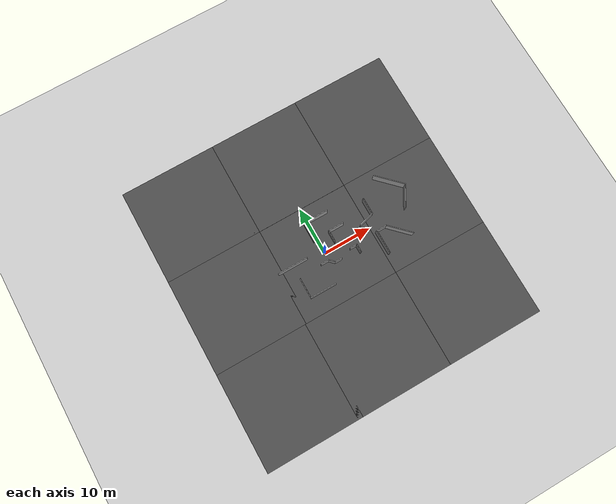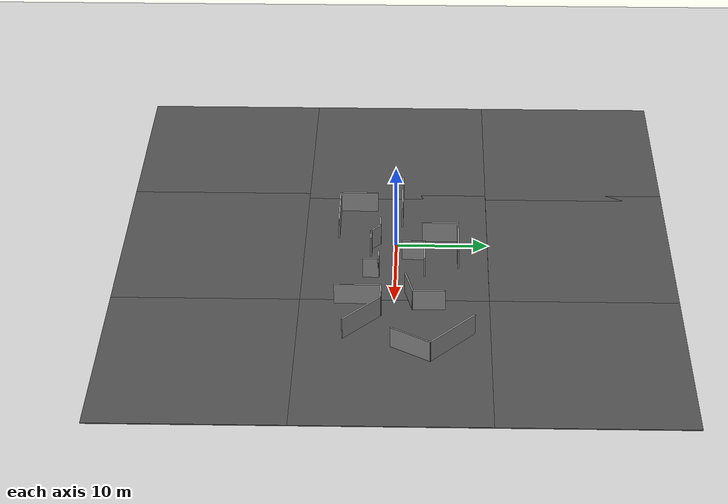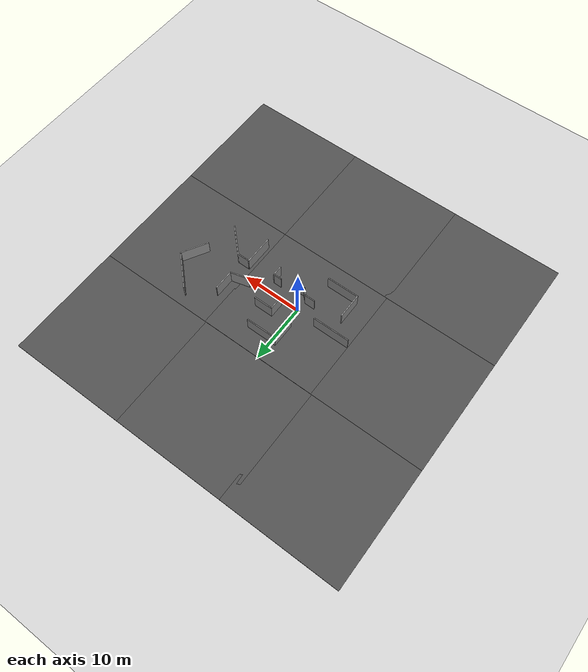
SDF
<sdf version="1.6">
 <world name="default">
  <light name="sun" type="directional">
   <pose>0 0 10 0 -0 0</pose>
   <diffuse>0.8 0.8 0.8 1</diffuse>
   <specular>0.1 0.1 0.1 1</specular>
   <attenuation>
    <range>1000</range>
    <constant>0.9</constant>
    <linear>0.01</linear>
    <quadratic>0.001</quadratic>
   </attenuation>
   <direction>-0.5 0.5 -1</direction>
  </light>
  <model name="ground_plane">
   <static>1</static>
   <link name="link">
    <collision name="collision">
     <geometry><plane><normal>0 0 1</normal><size>100 100</size></plane></geometry>
     <surface><friction><ode><mu>100</mu><mu2>50</mu2></ode></friction></surface>
    </collision>
    <visual name="visual">
     <cast_shadows>0</cast_shadows>
     <geometry><plane><normal>0 0 1</normal><size>100 100</size></plane></geometry>
     <material>
      <script><uri>file://media/materials/scripts/gazebo.material</uri><name>Gazebo/Grey</name></script>
     </material>
    </visual>
   </link>
  </model>
  <gravity>0 0 -9.8</gravity>
  <magnetic_field>6e-06 2.3e-05 -4.2e-05</magnetic_field>
  <atmosphere type="adiabatic"/>
  <physics name="default_physics" default="0" type="ode">
   <max_step_size>0.001</max_step_size>
   <real_time_factor>1</real_time_factor>
   <real_time_update_rate>1000</real_time_update_rate>
  </physics>
  <scene><ambient>0.4 0.4 0.4 1</ambient><background>0.7 0.7 0.7 1</background><shadows>1</shadows></scene>
  <spherical_coordinates>
   <surface_model>EARTH_WGS84</surface_model>
   <latitude_deg>0</latitude_deg>
   <longitude_deg>0</longitude_deg>
   <elevation>0</elevation>
   <heading_deg>0</heading_deg>
  </spherical_coordinates>
  <model name="asphalt_plane">
   <static>1</static>
   <link name="link">
    <collision name="collision"><geometry><box><size>20 20 0.1</size></box></geometry></collision>
    <visual name="visual">
     <cast_shadows>0</cast_shadows>
     <geometry><box><size>20 20 0.1</size></box></geometry>
     <material>
      <script>
       <uri>model://asphalt_plane/materials/scripts</uri>
       <uri>model://asphalt_plane/materials/textures</uri>
       <name>vrc/asphalt</name>
      </script>
     </material>
    </visual>
   </link>
   <pose>0.196693 -0.010109 0 0 -0 0</pose>
  </model>
  <model name="Maze2">
   <pose>5.19327 0.994102 0 0 -0 0</pose>
   <link name="Wall_0">
    <collision name="Wall_0_Collision">
     <geometry><box><size>1.75 0.15 2.5</size></box></geometry>
     <pose>0 0 1.25 0 -0 0</pose>
    </collision>
    <visual name="Wall_0_Visual">
     <pose>0 0 1.25 0 -0 0</pose>
     <geometry><box><size>1.75 0.15 2.5</size></box></geometry>
     <material>
      <script><uri>file://media/materials/scripts/gazebo.material</uri><name>Gazebo/Grey</name></script>
      <ambient>1 1 1 1</ambient>
     </material>
    </visual>
    <pose>-6.19327 -2.7241 0 0 -0 0</pose>
   </link>
   <link name="Wall_1">
    <collision name="Wall_1_Collision">
     <geometry><box><size>1.5 0.15 2.5</size></box></geometry>
     <pose>0 0 1.25 0 -0 0</pose>
    </collision>
    <visual name="Wall_1_Visual">
     <pose>0 0 1.25 0 -0 0</pose>
     <geometry><box><size>1.5 0.15 2.5</size></box></geometry>
     <material>
      <script><uri>file://media/materials/scripts/gazebo.material</uri><name>Gazebo/Grey</name></script>
      <ambient>1 1 1 1</ambient>
     </material>
    </visual>
    <pose>-4.91597 -3.2014 0 0 0 -0.785398</pose>
   </link>
   <link name="Wall_10">
    <collision name="Wall_10_Collision">
     <geometry><box><size>2.5 0.15 2.5</size></box></geometry>
     <pose>0 0 1.25 0 -0 0</pose>
    </collision>
    <visual name="Wall_10_Visual">
     <pose>0 0 1.25 0 -0 0</pose>
     <geometry><box><size>2.5 0.15 2.5</size></box></geometry>
     <material>
      <script><uri>file://media/materials/scripts/gazebo.material</uri><name>Gazebo/Grey</name></script>
      <ambient>1 1 1 1</ambient>
     </material>
    </visual>
    <pose>-2.58252 0.962314 0 0 -0 1.5708</pose>
   </link>
   <link name="Wall_11">
    <collision name="Wall_11_Collision">
     <geometry><box><size>3.25 0.15 2.5</size></box></geometry>
     <pose>0 0 1.25 0 -0 0</pose>
    </collision>
    <visual name="Wall_11_Visual">
     <pose>0 0 1.25 0 -0 0</pose>
     <geometry><box><size>3.25 0.15 2.5</size></box></geometry>
     <material>
      <script><uri>file://media/materials/scripts/gazebo.material</uri><name>Gazebo/Grey</name></script>
      <ambient>1 1 1 1</ambient>
     </material>
    </visual>
    <pose>-1.03252 2.13732 0 0 -0 0</pose>
   </link>
   <link name="Wall_13">
    <collision name="Wall_13_Collision">
     <geometry><box><size>3.5 0.15 2.5</size></box></geometry>
     <pose>0 0 1.25 0 -0 0</pose>
    </collision>
    <visual name="Wall_13_Visual">
     <pose>0 0 1.25 0 -0 0</pose>
     <geometry><box><size>3.5 0.15 2.5</size></box></geometry>
     <material>
      <script><uri>file://media/materials/scripts/gazebo.material</uri><name>Gazebo/Grey</name></script>
      <ambient>1 1 1 1</ambient>
     </material>
    </visual>
    <pose>6.31771 2.60288 0 0 0 -1.5708</pose>
   </link>
   <link name="Wall_14">
    <collision name="Wall_14_Collision">
     <geometry><box><size>3.25 0.15 2.5</size></box></geometry>
     <pose>0 0 1.25 0 -0 0</pose>
    </collision>
    <visual name="Wall_14_Visual">
     <pose>0 0 1.25 0 -0 0</pose>
     <geometry><box><size>3.25 0.15 2.5</size></box></geometry>
     <material>
      <script><uri>file://media/materials/scripts/gazebo.material</uri><name>Gazebo/Grey</name></script>
      <ambient>1 1 1 1</ambient>
     </material>
    </visual>
    <pose>4.82052 0.526714 0 0 0 -2.87979</pose>
   </link>
   <link name="Wall_16">
    <collision name="Wall_16_Collision">
     <geometry><box><size>6.5 0.15 2.5</size></box></geometry>
     <pose>0 0 1.25 0 -0 0</pose>
    </collision>
    <visual name="Wall_16_Visual">
     <pose>0 0 1.25 0 -0 0</pose>
     <geometry><box><size>6.5 0.15 2.5</size></box></geometry>
     <material>
      <script><uri>file://media/materials/scripts/gazebo.material</uri><name>Gazebo/Grey</name></script>
      <ambient>1 1 1 1</ambient>
     </material>
    </visual>
    <pose>12.6083 5.02653 0 0 0 -0.785398</pose>
   </link>
   <link name="Wall_17">
    <collision name="Wall_17_Collision">
     <geometry><box><size>4.75 0.15 2.5</size></box></geometry>
     <pose>0 0 1.25 0 -0 0</pose>
    </collision>
    <visual name="Wall_17_Visual">
     <pose>0 0 1.25 0 -0 0</pose>
     <geometry><box><size>4.75 0.15 2.5</size></box></geometry>
     <material>
      <script><uri>file://media/materials/scripts/gazebo.material</uri><name>Gazebo/Grey</name></script>
      <ambient>1 1 1 1</ambient>
     </material>
    </visual>
    <pose>13.7034 0.78961 0 0 0 -2.0944</pose>
   </link>
   <link name="Wall_19">
    <collision name="Wall_19_Collision">
     <geometry><box><size>5 0.15 2.5</size></box></geometry>
     <pose>0 0 1.25 0 -0 0</pose>
    </collision>
    <visual name="Wall_19_Visual">
     <pose>0 0 1.25 0 -0 0</pose>
     <geometry><box><size>5 0.15 2.5</size></box></geometry>
     <material>
      <script><uri>file://media/materials/scripts/gazebo.material</uri><name>Gazebo/Grey</name></script>
      <ambient>1 1 1 1</ambient>
     </material>
    </visual>
    <pose>5.37403 -4.84619 0 0 -0 1.5708</pose>
   </link>
   <link name="Wall_2">
    <collision name="Wall_2_Collision">
     <geometry><box><size>1.5 0.15 2.5</size></box></geometry>
     <pose>0 0 1.25 0 -0 0</pose>
    </collision>
    <visual name="Wall_2_Visual">
     <pose>0 0 1.25 0 -0 0</pose>
     <geometry><box><size>1.5 0.15 2.5</size></box></geometry>
     <material>
      <script><uri>file://media/materials/scripts/gazebo.material</uri><name>Gazebo/Grey</name></script>
      <ambient>1 1 1 1</ambient>
     </material>
    </visual>
    <pose>-3.76367 -3.6787 0 0 -0 0</pose>
   </link>
   <link name="Wall_20">
    <collision name="Wall_20_Collision">
     <geometry><box><size>2.25 0.15 2.5</size></box></geometry>
     <pose>0 0 1.25 0 -0 0</pose>
    </collision>
    <visual name="Wall_20_Visual">
     <pose>0 0 1.25 0 -0 0</pose>
     <geometry><box><size>2.25 0.15 2.5</size></box></geometry>
     <material>
      <script><uri>file://media/materials/scripts/gazebo.material</uri><name>Gazebo/Grey</name></script>
      <ambient>1 1 1 1</ambient>
     </material>
    </visual>
    <pose>6.42403 -2.42119 0 0 -0 0</pose>
   </link>
   <link name="Wall_21">
    <collision name="Wall_21_Collision">
     <geometry><box><size>5.5 0.15 2.5</size></box></geometry>
     <pose>0 0 1.25 0 -0 0</pose>
    </collision>
    <visual name="Wall_21_Visual">
     <pose>0 0 1.25 0 -0 0</pose>
     <geometry><box><size>5.5 0.15 2.5</size></box></geometry>
     <material>
      <script><uri>file://media/materials/scripts/gazebo.material</uri><name>Gazebo/Grey</name></script>
      <ambient>1 1 1 1</ambient>
     </material>
    </visual>
    <pose>9.36554 -4.3127 0 0 0 -0.785398</pose>
   </link>
   <link name="Wall_23">
    <collision name="Wall_23_Collision">
     <geometry><box><size>4 0.15 2.5</size></box></geometry>
     <pose>0 0 1.25 0 -0 0</pose>
    </collision>
    <visual name="Wall_23_Visual">
     <pose>0 0 1.25 0 -0 0</pose>
     <geometry><box><size>4 0.15 2.5</size></box></geometry>
     <material>
      <script><uri>file://media/materials/scripts/gazebo.material</uri><name>Gazebo/Grey</name></script>
      <ambient>1 1 1 1</ambient>
     </material>
    </visual>
    <pose>-6.01786 3.84869 0 0 -0 1.5708</pose>
   </link>
   <link name="Wall_24">
    <collision name="Wall_24_Collision">
     <geometry><box><size>5.25 0.15 2.5</size></box></geometry>
     <pose>0 0 1.25 0 -0 0</pose>
    </collision>
    <visual name="Wall_24_Visual">
     <pose>0 0 1.25 0 -0 0</pose>
     <geometry><box><size>5.25 0.15 2.5</size></box></geometry>
     <material>
      <script><uri>file://media/materials/scripts/gazebo.material</uri><name>Gazebo/Grey</name></script>
      <ambient>1 1 1 1</ambient>
     </material>
    </visual>
    <pose>-3.46786 5.77369 0 0 -0 0</pose>
   </link>
   <link name="Wall_26">
    <collision name="Wall_26_Collision">
     <geometry><box><size>6.25 0.15 2.5</size></box></geometry>
     <pose>0 0 1.25 0 -0 0</pose>
    </collision>
    <visual name="Wall_26_Visual">
     <pose>0 0 1.25 0 -0 0</pose>
     <geometry><box><size>6.25 0.15 2.5</size></box></geometry>
     <material>
      <script><uri>file://media/materials/scripts/gazebo.material</uri><name>Gazebo/Grey</name></script>
      <ambient>1 1 1 1</ambient>
     </material>
    </visual>
    <pose>-11.8345 -0.354691 0 0 -0 3.14159</pose>
   </link>
   <link name="Wall_28">
    <collision name="Wall_28_Collision">
     <geometry><box><size>4.25 0.15 2.5</size></box></geometry>
     <pose>0 0 1.25 0 -0 0</pose>
    </collision>
    <visual name="Wall_28_Visual">
     <pose>0 0 1.25 0 -0 0</pose>
     <geometry><box><size>4.25 0.15 2.5</size></box></geometry>
     <material>
      <script><uri>file://media/materials/scripts/gazebo.material</uri><name>Gazebo/Grey</name></script>
      <ambient>1 1 1 1</ambient>
     </material>
    </visual>
    <pose>-11.7952 -5.25266 0 0 0 -1.5708</pose>
   </link>
   <link name="Wall_29">
    <collision name="Wall_29_Collision">
     <geometry><box><size>5.5 0.15 2.5</size></box></geometry>
     <pose>0 0 1.25 0 -0 0</pose>
    </collision>
    <visual name="Wall_29_Visual">
     <pose>0 0 1.25 0 -0 0</pose>
     <geometry><box><size>5.5 0.15 2.5</size></box></geometry>
     <material>
      <script><uri>file://media/materials/scripts/gazebo.material</uri><name>Gazebo/Grey</name></script>
      <ambient>1 1 1 1</ambient>
     </material>
    </visual>
    <pose>-9.12017 -7.30266 0 0 -0 0</pose>
   </link>
   <link name="Wall_5">
    <collision name="Wall_5_Collision">
     <geometry><box><size>1.5 0.15 2.5</size></box></geometry>
     <pose>0 0 1.25 0 -0 0</pose>
    </collision>
    <visual name="Wall_5_Visual">
     <pose>0 0 1.25 0 -0 0</pose>
     <geometry><box><size>1.5 0.15 2.5</size></box></geometry>
     <material>
      <script><uri>file://media/materials/scripts/gazebo.material</uri><name>Gazebo/Grey</name></script>
      <ambient>1 1 1 1</ambient>
     </material>
    </visual>
    <pose>0.04564 -2.7943 0 0 -0 0</pose>
   </link>
   <link name="Wall_6">
    <collision name="Wall_6_Collision">
     <geometry><box><size>1.75 0.15 2.5</size></box></geometry>
     <pose>0 0 1.25 0 -0 0</pose>
    </collision>
    <visual name="Wall_6_Visual">
     <pose>0 0 1.25 0 -0 0</pose>
     <geometry><box><size>1.75 0.15 2.5</size></box></geometry>
     <material>
      <script><uri>file://media/materials/scripts/gazebo.material</uri><name>Gazebo/Grey</name></script>
      <ambient>1 1 1 1</ambient>
     </material>
    </visual>
    <pose>0.720639 -3.5943 0 0 0 -1.5708</pose>
   </link>
   <static>1</static>
  </model>
  <model name="asphalt_plane_0">
   <static>1</static>
   <link name="link">
    <collision name="collision"><geometry><box><size>20 20 0.1</size></box></geometry></collision>
    <visual name="visual">
     <cast_shadows>0</cast_shadows>
     <geometry><box><size>20 20 0.1</size></box></geometry>
     <material>
      <script>
       <uri>model://asphalt_plane/materials/scripts</uri>
       <uri>model://asphalt_plane/materials/textures</uri>
       <name>vrc/asphalt</name>
      </script>
     </material>
    </visual>
   </link>
   <pose>20 0 0 0 -0 0</pose>
  </model>
  <model name="asphalt_plane_1">
   <static>1</static>
   <link name="link">
    <collision name="collision"><geometry><box><size>20 20 0.1</size></box></geometry></collision>
    <visual name="visual">
     <cast_shadows>0</cast_shadows>
     <geometry><box><size>20 20 0.1</size></box></geometry>
     <material>
      <script>
       <uri>model://asphalt_plane/materials/scripts</uri>
       <uri>model://asphalt_plane/materials/textures</uri>
       <name>vrc/asphalt</name>
      </script>
     </material>
    </visual>
   </link>
   <pose>-19 0 0 0 -0 0</pose>
  </model>
  <model name="asphalt_plane_2">
   <static>1</static>
   <link name="link">
    <collision name="collision"><geometry><box><size>20 20 0.1</size></box></geometry></collision>
    <visual name="visual">
     <cast_shadows>0</cast_shadows>
     <geometry><box><size>20 20 0.1</size></box></geometry>
     <material>
      <script>
       <uri>model://asphalt_plane/materials/scripts</uri>
       <uri>model://asphalt_plane/materials/textures</uri>
       <name>vrc/asphalt</name>
      </script>
     </material>
    </visual>
   </link>
   <pose>20 -20 0 0 -0 0</pose>
  </model>
  <model name="asphalt_plane_3">
   <static>1</static>
   <link name="link">
    <collision name="collision"><geometry><box><size>20 20 0.1</size></box></geometry></collision>
    <visual name="visual">
     <cast_shadows>0</cast_shadows>
     <geometry><box><size>20 20 0.1</size></box></geometry>
     <material>
      <script>
       <uri>model://asphalt_plane/materials/scripts</uri>
       <uri>model://asphalt_plane/materials/textures</uri>
       <name>vrc/asphalt</name>
      </script>
     </material>
    </visual>
   </link>
   <pose>0 -20 0 0 -0 0</pose>
  </model>
  <model name="asphalt_plane_4">
   <static>1</static>
   <link name="link">
    <collision name="collision"><geometry><box><size>20 20 0.1</size></box></geometry></collision>
    <visual name="visual">
     <cast_shadows>0</cast_shadows>
     <geometry><box><size>20 20 0.1</size></box></geometry>
     <material>
      <script>
       <uri>model://asphalt_plane/materials/scripts</uri>
       <uri>model://asphalt_plane/materials/textures</uri>
       <name>vrc/asphalt</name>
      </script>
     </material>
    </visual>
   </link>
   <pose>-19 -20 0 0 -0 0</pose>
  </model>
  <model name="asphalt_plane_5">
   <static>1</static>
   <link name="link">
    <collision name="collision"><geometry><box><size>20 20 0.1</size></box></geometry></collision>
    <visual name="visual">
     <cast_shadows>0</cast_shadows>
     <geometry><box><size>20 20 0.1</size></box></geometry>
     <material>
      <script>
       <uri>model://asphalt_plane/materials/scripts</uri>
       <uri>model://asphalt_plane/materials/textures</uri>
       <name>vrc/asphalt</name>
      </script>
     </material>
    </visual>
   </link>
   <pose>-19 20 0 0 -0 0</pose>
  </model>
  <model name="asphalt_plane_6">
   <static>1</static>
   <link name="link">
    <collision name="collision"><geometry><box><size>20 20 0.1</size></box></geometry></collision>
    <visual name="visual">
     <cast_shadows>0</cast_shadows>
     <geometry><box><size>20 20 0.1</size></box></geometry>
     <material>
      <script>
       <uri>model://asphalt_plane/materials/scripts</uri>
       <uri>model://asphalt_plane/materials/textures</uri>
       <name>vrc/asphalt</name>
      </script>
     </material>
    </visual>
   </link>
   <pose>0 20 0 0 -0 0</pose>
  </model>
  <model name="asphalt_plane_7">
   <static>1</static>
   <link name="link">
    <collision name="collision"><geometry><box><size>20 20 0.1</size></box></geometry></collision>
    <visual name="visual">
     <cast_shadows>0</cast_shadows>
     <geometry><box><size>20 20 0.1</size></box></geometry>
     <material>
      <script>
       <uri>model://asphalt_plane/materials/scripts</uri>
       <uri>model://asphalt_plane/materials/textures</uri>
       <name>vrc/asphalt</name>
      </script>
     </material>
    </visual>
   </link>
   <pose>20 20 0 0 -0 0</pose>
  </model>
  <light name="user_directional_light_0" type="directional">
   <pose>1 0 1 0 -0 0</pose>
   <diffuse>0.5 0.5 0.5 1</diffuse>
   <specular>0.1 0.1 0.1 1</specular>
   <direction>0.1 0.1 -0.9</direction>
   <attenuation>
    <range>20</range>
    <constant>0.5</constant>
    <linear>0.01</linear>
    <quadratic>0.001</quadratic>
   </attenuation>
  </light>
 </world>
</sdf>
